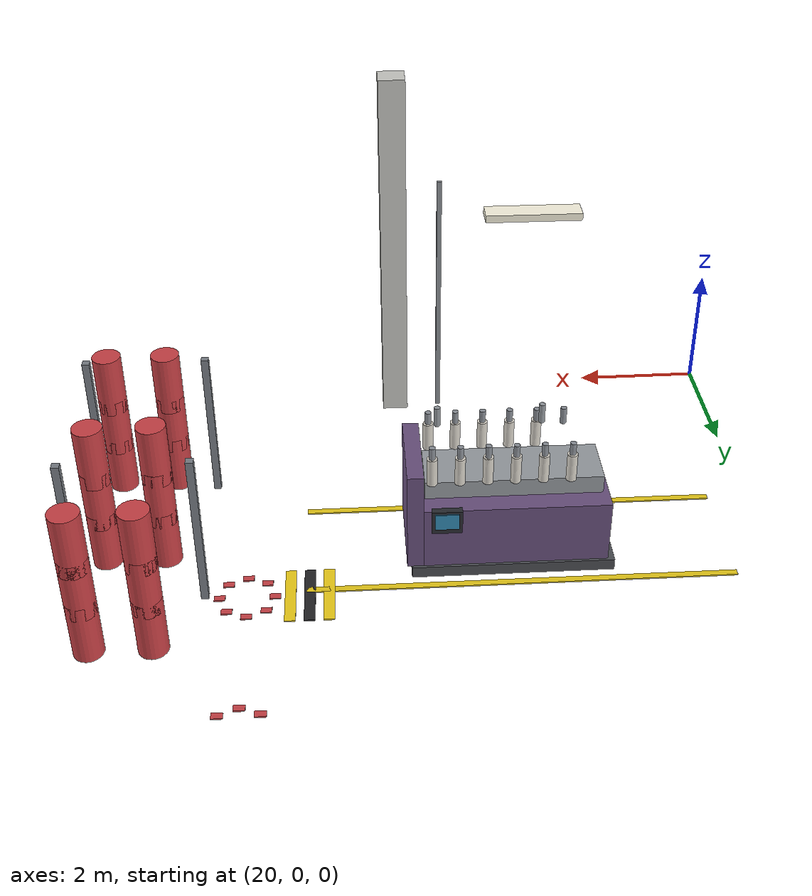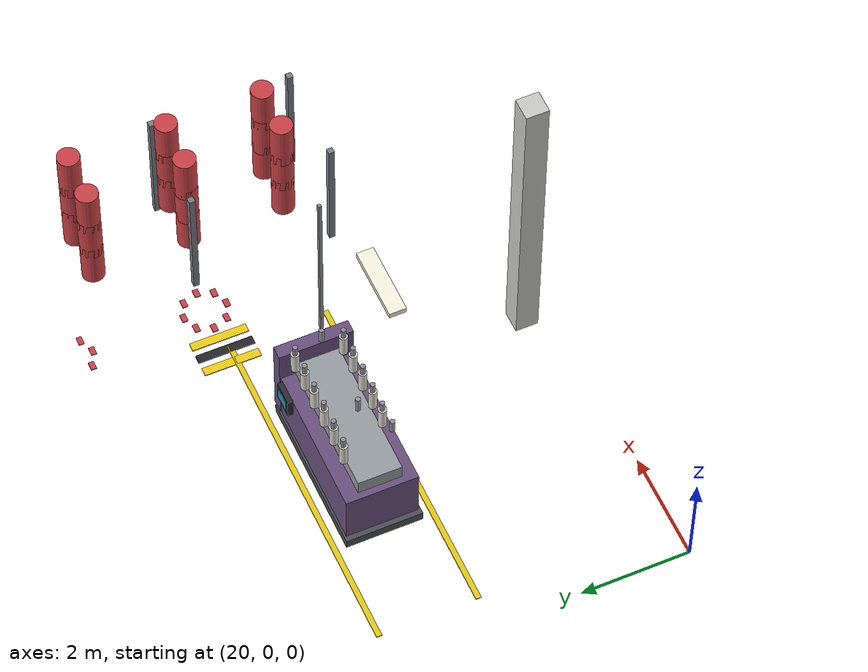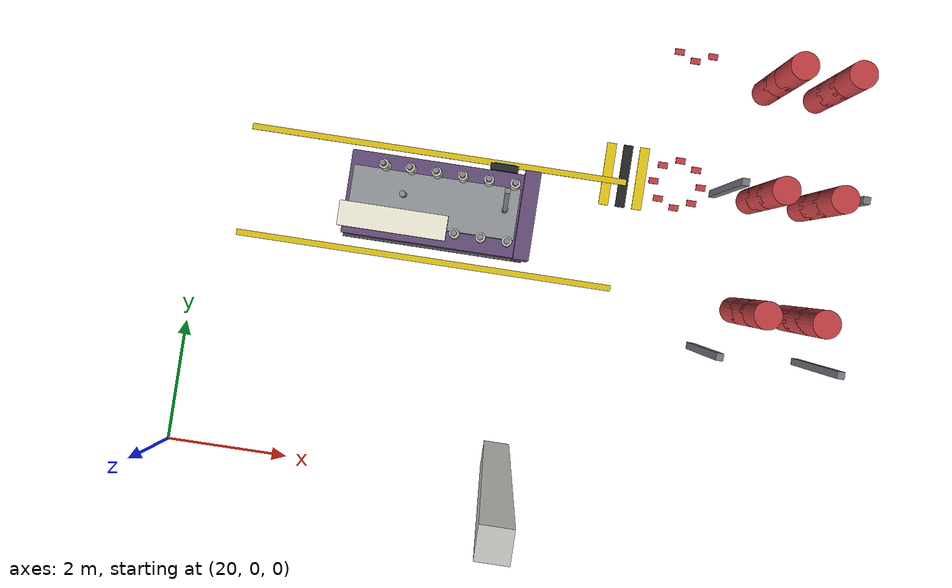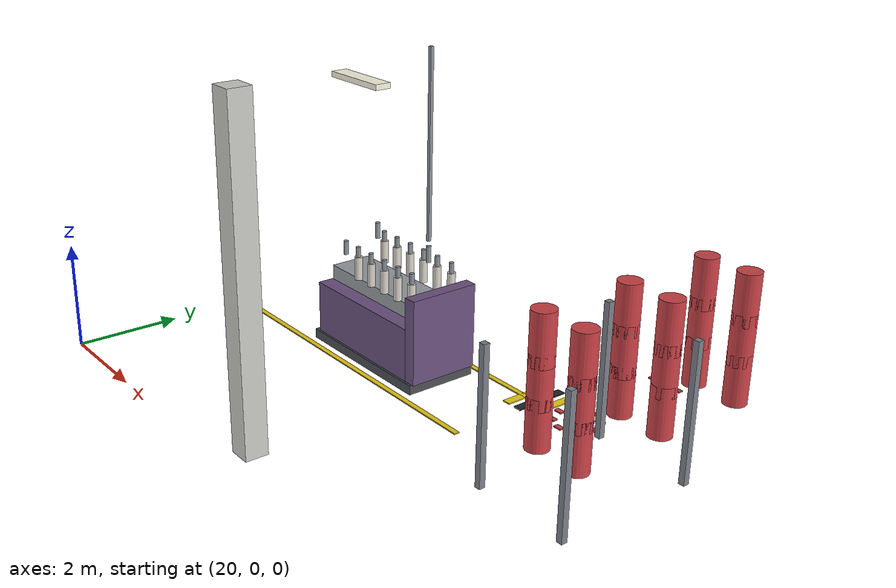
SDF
<sdf version="1.10">
 <world name="textile_mill">
  <model name="col_6">
   <static>true</static>
   <pose>25.450 0.550 3.000 0 0 0</pose>
   <link name="l">
    <collision name="c"><geometry><box><size>0.420 0.420 6.000</size></box></geometry></collision>
    <visual name="v">
     <geometry><box><size>0.420 0.420 6.000</size></box></geometry>
     <material>
      <ambient>0.800 0.800 0.780 1.0</ambient>
      <diffuse>0.800 0.800 0.780 1.0</diffuse>
      <specular>0.18 0.18 0.18 1</specular>
      <pbr><metal><roughness>0.85</roughness><metalness>0.0</metalness></metal></pbr>
     </material>
    </visual>
   </link>
  </model>
  <model name="lamp_3_0">
   <static>true</static>
   <pose>23.700 4.000 5.280 0 0 0</pose>
   <link name="l">
    <collision name="c"><geometry><box><size>1.300 0.300 0.100</size></box></geometry></collision>
    <visual name="v">
     <geometry><box><size>1.300 0.300 0.100</size></box></geometry>
     <material>
      <ambient>1.000 0.980 0.900 1.0</ambient>
      <diffuse>1.000 0.980 0.900 1.0</diffuse>
      <specular>0.18 0.18 0.18 1</specular>
      <pbr><metal><roughness>0.3</roughness><metalness>0.0</metalness></metal></pbr>
     </material>
    </visual>
   </link>
  </model>
  <model name="clnz_roving_0_3">
   <static>true</static>
   <pose>23.500 4.500 2.380 0.0000 0.0000 0.0000</pose>
   <link name="l">
    <collision name="c">
     <geometry><cylinder><radius>0.045</radius><length>0.300</length></cylinder></geometry>
    </collision>
    <visual name="v">
     <geometry><cylinder><radius>0.045</radius><length>0.300</length></cylinder></geometry>
     <material>
      <ambient>0.580 0.600 0.620 1.0</ambient>
      <diffuse>0.580 0.600 0.620 1.0</diffuse>
      <specular>0.18 0.18 0.18 1</specular>
      <pbr><metal><roughness>0.35</roughness><metalness>0.5</metalness></metal></pbr>
     </material>
    </visual>
   </link>
  </model>
  <model name="clnz_roving_0_4">
   <static>true</static>
   <pose>25.000 4.500 2.380 0.0000 0.0000 0.0000</pose>
   <link name="l">
    <collision name="c">
     <geometry><cylinder><radius>0.045</radius><length>0.300</length></cylinder></geometry>
    </collision>
    <visual name="v">
     <geometry><cylinder><radius>0.045</radius><length>0.300</length></cylinder></geometry>
     <material>
      <ambient>0.580 0.600 0.620 1.0</ambient>
      <diffuse>0.580 0.600 0.620 1.0</diffuse>
      <specular>0.18 0.18 0.18 1</specular>
      <pbr><metal><roughness>0.35</roughness><metalness>0.5</metalness></metal></pbr>
     </material>
    </visual>
   </link>
  </model>
  <model name="clnh_roving_0_2">
   <static>true</static>
   <pose>25.000 4.500 4.310 0 0 0</pose>
   <link name="l">
    <collision name="c"><geometry><box><size>0.060 0.060 3.380</size></box></geometry></collision>
    <visual name="v">
     <geometry><box><size>0.060 0.060 3.380</size></box></geometry>
     <material>
      <ambient>0.550 0.570 0.590 1.0</ambient>
      <diffuse>0.550 0.570 0.590 1.0</diffuse>
      <specular>0.18 0.18 0.18 1</specular>
      <pbr><metal><roughness>0.65</roughness><metalness>0.6</metalness></metal></pbr>
     </material>
    </visual>
   </link>
  </model>
  <model name="line_roving_4.5_a">
   <static>true</static>
   <pose>23.775 3.600 0.012 0 0 0</pose>
   <link name="l">
    <visual name="v">
     <geometry><box><size>6.350 0.100 0.020</size></box></geometry>
     <material>
      <ambient>0.920 0.800 0.100 1.0</ambient>
      <diffuse>0.920 0.800 0.100 1.0</diffuse>
      <specular>0.18 0.18 0.18 1</specular>
      <pbr><metal><roughness>0.65</roughness><metalness>0.0</metalness></metal></pbr>
     </material>
    </visual>
   </link>
  </model>
  <model name="line_roving_4.5_b">
   <static>true</static>
   <pose>23.775 5.400 0.012 0 0 0</pose>
   <link name="l">
    <visual name="v">
     <geometry><box><size>6.350 0.100 0.020</size></box></geometry>
     <material>
      <ambient>0.920 0.800 0.100 1.0</ambient>
      <diffuse>0.920 0.800 0.100 1.0</diffuse>
      <specular>0.18 0.18 0.18 1</specular>
      <pbr><metal><roughness>0.65</roughness><metalness>0.0</metalness></metal></pbr>
     </material>
    </visual>
   </link>
  </model>
  <model name="slot_storage_red_slot_0_0">
   <static>true</static>
   <pose>28.200 5.500 0.012 0 0 0</pose>
   <link name="l">
    <visual name="v">
     <geometry><box><size>0.160 0.100 0.020</size></box></geometry>
     <material>
      <ambient>0.800 0.260 0.280 1.0</ambient>
      <diffuse>0.800 0.260 0.280 1.0</diffuse>
      <specular>0.18 0.18 0.18 1</specular>
      <pbr><metal><roughness>0.65</roughness><metalness>0.0</metalness></metal></pbr>
     </material>
    </visual>
   </link>
  </model>
  <model name="slot_storage_red_slot_0_1">
   <static>true</static>
   <pose>28.083 5.783 0.012 0 0 0</pose>
   <link name="l">
    <visual name="v">
     <geometry><box><size>0.160 0.100 0.020</size></box></geometry>
     <material>
      <ambient>0.800 0.260 0.280 1.0</ambient>
      <diffuse>0.800 0.260 0.280 1.0</diffuse>
      <specular>0.18 0.18 0.18 1</specular>
      <pbr><metal><roughness>0.65</roughness><metalness>0.0</metalness></metal></pbr>
     </material>
    </visual>
   </link>
  </model>
  <model name="slot_storage_red_slot_0_2">
   <static>true</static>
   <pose>27.800 5.900 0.012 0 0 0</pose>
   <link name="l">
    <visual name="v">
     <geometry><box><size>0.160 0.100 0.020</size></box></geometry>
     <material>
      <ambient>0.800 0.260 0.280 1.0</ambient>
      <diffuse>0.800 0.260 0.280 1.0</diffuse>
      <specular>0.18 0.18 0.18 1</specular>
      <pbr><metal><roughness>0.65</roughness><metalness>0.0</metalness></metal></pbr>
     </material>
    </visual>
   </link>
  </model>
  <model name="slot_storage_red_slot_0_3">
   <static>true</static>
   <pose>27.517 5.783 0.012 0 0 0</pose>
   <link name="l">
    <visual name="v">
     <geometry><box><size>0.160 0.100 0.020</size></box></geometry>
     <material>
      <ambient>0.800 0.260 0.280 1.0</ambient>
      <diffuse>0.800 0.260 0.280 1.0</diffuse>
      <specular>0.18 0.18 0.18 1</specular>
      <pbr><metal><roughness>0.65</roughness><metalness>0.0</metalness></metal></pbr>
     </material>
    </visual>
   </link>
  </model>
  <model name="slot_storage_red_slot_0_4">
   <static>true</static>
   <pose>27.400 5.500 0.012 0 0 0</pose>
   <link name="l">
    <visual name="v">
     <geometry><box><size>0.160 0.100 0.020</size></box></geometry>
     <material>
      <ambient>0.800 0.260 0.280 1.0</ambient>
      <diffuse>0.800 0.260 0.280 1.0</diffuse>
      <specular>0.18 0.18 0.18 1</specular>
      <pbr><metal><roughness>0.65</roughness><metalness>0.0</metalness></metal></pbr>
     </material>
    </visual>
   </link>
  </model>
  <model name="slot_storage_red_slot_0_5">
   <static>true</static>
   <pose>27.517 5.217 0.012 0 0 0</pose>
   <link name="l">
    <visual name="v">
     <geometry><box><size>0.160 0.100 0.020</size></box></geometry>
     <material>
      <ambient>0.800 0.260 0.280 1.0</ambient>
      <diffuse>0.800 0.260 0.280 1.0</diffuse>
      <specular>0.18 0.18 0.18 1</specular>
      <pbr><metal><roughness>0.65</roughness><metalness>0.0</metalness></metal></pbr>
     </material>
    </visual>
   </link>
  </model>
  <model name="slot_storage_red_slot_0_6">
   <static>true</static>
   <pose>27.800 5.100 0.012 0 0 0</pose>
   <link name="l">
    <visual name="v">
     <geometry><box><size>0.160 0.100 0.020</size></box></geometry>
     <material>
      <ambient>0.800 0.260 0.280 1.0</ambient>
      <diffuse>0.800 0.260 0.280 1.0</diffuse>
      <specular>0.18 0.18 0.18 1</specular>
      <pbr><metal><roughness>0.65</roughness><metalness>0.0</metalness></metal></pbr>
     </material>
    </visual>
   </link>
  </model>
  <model name="slot_storage_red_slot_0_7">
   <static>true</static>
   <pose>28.083 5.217 0.012 0 0 0</pose>
   <link name="l">
    <visual name="v">
     <geometry><box><size>0.160 0.100 0.020</size></box></geometry>
     <material>
      <ambient>0.800 0.260 0.280 1.0</ambient>
      <diffuse>0.800 0.260 0.280 1.0</diffuse>
      <specular>0.18 0.18 0.18 1</specular>
      <pbr><metal><roughness>0.65</roughness><metalness>0.0</metalness></metal></pbr>
     </material>
    </visual>
   </link>
  </model>
  <model name="slot_storage_red_slot_1_5">
   <static>true</static>
   <pose>27.517 7.717 0.012 0 0 0</pose>
   <link name="l">
    <visual name="v">
     <geometry><box><size>0.160 0.100 0.020</size></box></geometry>
     <material>
      <ambient>0.800 0.260 0.280 1.0</ambient>
      <diffuse>0.800 0.260 0.280 1.0</diffuse>
      <specular>0.18 0.18 0.18 1</specular>
      <pbr><metal><roughness>0.65</roughness><metalness>0.0</metalness></metal></pbr>
     </material>
    </visual>
   </link>
  </model>
  <model name="slot_storage_red_slot_1_6">
   <static>true</static>
   <pose>27.800 7.600 0.012 0 0 0</pose>
   <link name="l">
    <visual name="v">
     <geometry><box><size>0.160 0.100 0.020</size></box></geometry>
     <material>
      <ambient>0.800 0.260 0.280 1.0</ambient>
      <diffuse>0.800 0.260 0.280 1.0</diffuse>
      <specular>0.18 0.18 0.18 1</specular>
      <pbr><metal><roughness>0.65</roughness><metalness>0.0</metalness></metal></pbr>
     </material>
    </visual>
   </link>
  </model>
  <model name="slot_storage_red_slot_1_7">
   <static>true</static>
   <pose>28.083 7.717 0.012 0 0 0</pose>
   <link name="l">
    <visual name="v">
     <geometry><box><size>0.160 0.100 0.020</size></box></geometry>
     <material>
      <ambient>0.800 0.260 0.280 1.0</ambient>
      <diffuse>0.800 0.260 0.280 1.0</diffuse>
      <specular>0.18 0.18 0.18 1</specular>
      <pbr><metal><roughness>0.65</roughness><metalness>0.0</metalness></metal></pbr>
     </material>
    </visual>
   </link>
  </model>
  <model name="hz_red_0_0">
   <static>true</static>
   <pose>27.180 5.500 0.012 0 0 0</pose>
   <link name="l">
    <visual name="v">
     <geometry><box><size>0.160 1.050 0.020</size></box></geometry>
     <material>
      <ambient>0.950 0.820 0.100 1.0</ambient>
      <diffuse>0.950 0.820 0.100 1.0</diffuse>
      <specular>0.18 0.18 0.18 1</specular>
      <pbr><metal><roughness>0.65</roughness><metalness>0.0</metalness></metal></pbr>
     </material>
    </visual>
   </link>
  </model>
  <model name="hz_red_0_1">
   <static>true</static>
   <pose>26.900 5.500 0.012 0 0 0</pose>
   <link name="l">
    <visual name="v">
     <geometry><box><size>0.160 1.050 0.020</size></box></geometry>
     <material>
      <ambient>0.150 0.150 0.160 1.0</ambient>
      <diffuse>0.150 0.150 0.160 1.0</diffuse>
      <specular>0.18 0.18 0.18 1</specular>
      <pbr><metal><roughness>0.65</roughness><metalness>0.0</metalness></metal></pbr>
     </material>
    </visual>
   </link>
  </model>
  <model name="hz_red_0_2">
   <static>true</static>
   <pose>26.620 5.500 0.012 0 0 0</pose>
   <link name="l">
    <visual name="v">
     <geometry><box><size>0.160 1.050 0.020</size></box></geometry>
     <material>
      <ambient>0.950 0.820 0.100 1.0</ambient>
      <diffuse>0.950 0.820 0.100 1.0</diffuse>
      <specular>0.18 0.18 0.18 1</specular>
      <pbr><metal><roughness>0.65</roughness><metalness>0.0</metalness></metal></pbr>
     </material>
    </visual>
   </link>
  </model>
  <model name="roving_machine_0_plinth">
   <static>true</static>
   <pose>23.900 4.500 0.090 0 0 0</pose>
   <link name="l">
    <collision name="c"><geometry><box><size>3.000 1.400 0.180</size></box></geometry></collision>
    <visual name="v">
     <geometry><box><size>3.000 1.400 0.180</size></box></geometry>
     <material>
      <ambient>0.300 0.310 0.330 1.0</ambient>
      <diffuse>0.300 0.310 0.330 1.0</diffuse>
      <specular>0.18 0.18 0.18 1</specular>
      <pbr><metal><roughness>0.65</roughness><metalness>0.4</metalness></metal></pbr>
     </material>
    </visual>
   </link>
  </model>
  <model name="roving_machine_0_body">
   <static>true</static>
   <pose>23.900 4.500 0.680 0 0 0</pose>
   <link name="l">
    <collision name="c"><geometry><box><size>2.800 1.320 1.000</size></box></geometry></collision>
    <visual name="v">
     <geometry><box><size>2.800 1.320 1.000</size></box></geometry>
     <material>
      <ambient>0.420 0.320 0.500 1.0</ambient>
      <diffuse>0.420 0.320 0.500 1.0</diffuse>
      <specular>0.18 0.18 0.18 1</specular>
      <pbr><metal><roughness>0.45</roughness><metalness>0.25</metalness></metal></pbr>
     </material>
    </visual>
   </link>
  </model>
  <model name="roving_machine_0_draft">
   <static>true</static>
   <pose>23.900 4.500 1.360 0 0 0</pose>
   <link name="l">
    <collision name="c"><geometry><box><size>2.600 0.800 0.280</size></box></geometry></collision>
    <visual name="v">
     <geometry><box><size>2.600 0.800 0.280</size></box></geometry>
     <material>
      <ambient>0.600 0.620 0.640 1.0</ambient>
      <diffuse>0.600 0.620 0.640 1.0</diffuse>
      <specular>0.18 0.18 0.18 1</specular>
      <pbr><metal><roughness>0.3</roughness><metalness>0.6</metalness></metal></pbr>
     </material>
    </visual>
   </link>
  </model>
  <model name="roving_machine_0_fly_0_1">
   <static>true</static>
   <pose>23.100 4.060 2.020 0.0000 0.0000 0.0000</pose>
   <link name="l">
    <collision name="c">
     <geometry><cylinder><radius>0.045</radius><length>0.260</length></cylinder></geometry>
    </collision>
    <visual name="v">
     <geometry><cylinder><radius>0.045</radius><length>0.260</length></cylinder></geometry>
     <material>
      <ambient>0.550 0.570 0.600 1.0</ambient>
      <diffuse>0.550 0.570 0.600 1.0</diffuse>
      <specular>0.18 0.18 0.18 1</specular>
      <pbr><metal><roughness>0.25</roughness><metalness>0.7</metalness></metal></pbr>
     </material>
    </visual>
   </link>
  </model>
  <model name="roving_machine_0_bob_0_2">
   <static>true</static>
   <pose>23.500 4.060 1.740 0.0000 0.0000 0.0000</pose>
   <link name="l">
    <collision name="c">
     <geometry><cylinder><radius>0.075</radius><length>0.440</length></cylinder></geometry>
    </collision>
    <visual name="v">
     <geometry><cylinder><radius>0.075</radius><length>0.440</length></cylinder></geometry>
     <material>
      <ambient>0.860 0.840 0.800 1.0</ambient>
      <diffuse>0.860 0.840 0.800 1.0</diffuse>
      <specular>0.18 0.18 0.18 1</specular>
      <pbr><metal><roughness>0.65</roughness><metalness>0.0</metalness></metal></pbr>
     </material>
    </visual>
   </link>
  </model>
  <model name="roving_machine_0_fly_0_2">
   <static>true</static>
   <pose>23.500 4.060 2.020 0.0000 0.0000 0.0000</pose>
   <link name="l">
    <collision name="c">
     <geometry><cylinder><radius>0.045</radius><length>0.260</length></cylinder></geometry>
    </collision>
    <visual name="v">
     <geometry><cylinder><radius>0.045</radius><length>0.260</length></cylinder></geometry>
     <material>
      <ambient>0.550 0.570 0.600 1.0</ambient>
      <diffuse>0.550 0.570 0.600 1.0</diffuse>
      <specular>0.18 0.18 0.18 1</specular>
      <pbr><metal><roughness>0.25</roughness><metalness>0.7</metalness></metal></pbr>
     </material>
    </visual>
   </link>
  </model>
  <model name="roving_machine_0_bob_0_3">
   <static>true</static>
   <pose>23.900 4.060 1.740 0.0000 0.0000 0.0000</pose>
   <link name="l">
    <collision name="c">
     <geometry><cylinder><radius>0.075</radius><length>0.440</length></cylinder></geometry>
    </collision>
    <visual name="v">
     <geometry><cylinder><radius>0.075</radius><length>0.440</length></cylinder></geometry>
     <material>
      <ambient>0.860 0.840 0.800 1.0</ambient>
      <diffuse>0.860 0.840 0.800 1.0</diffuse>
      <specular>0.18 0.18 0.18 1</specular>
      <pbr><metal><roughness>0.65</roughness><metalness>0.0</metalness></metal></pbr>
     </material>
    </visual>
   </link>
  </model>
  <model name="roving_machine_0_fly_0_3">
   <static>true</static>
   <pose>23.900 4.060 2.020 0.0000 0.0000 0.0000</pose>
   <link name="l">
    <collision name="c">
     <geometry><cylinder><radius>0.045</radius><length>0.260</length></cylinder></geometry>
    </collision>
    <visual name="v">
     <geometry><cylinder><radius>0.045</radius><length>0.260</length></cylinder></geometry>
     <material>
      <ambient>0.550 0.570 0.600 1.0</ambient>
      <diffuse>0.550 0.570 0.600 1.0</diffuse>
      <specular>0.18 0.18 0.18 1</specular>
      <pbr><metal><roughness>0.25</roughness><metalness>0.7</metalness></metal></pbr>
     </material>
    </visual>
   </link>
  </model>
  <model name="roving_machine_0_bob_0_4">
   <static>true</static>
   <pose>24.300 4.060 1.740 0.0000 0.0000 0.0000</pose>
   <link name="l">
    <collision name="c">
     <geometry><cylinder><radius>0.075</radius><length>0.440</length></cylinder></geometry>
    </collision>
    <visual name="v">
     <geometry><cylinder><radius>0.075</radius><length>0.440</length></cylinder></geometry>
     <material>
      <ambient>0.860 0.840 0.800 1.0</ambient>
      <diffuse>0.860 0.840 0.800 1.0</diffuse>
      <specular>0.18 0.18 0.18 1</specular>
      <pbr><metal><roughness>0.65</roughness><metalness>0.0</metalness></metal></pbr>
     </material>
    </visual>
   </link>
  </model>
  <model name="roving_machine_0_fly_0_4">
   <static>true</static>
   <pose>24.300 4.060 2.020 0.0000 0.0000 0.0000</pose>
   <link name="l">
    <collision name="c">
     <geometry><cylinder><radius>0.045</radius><length>0.260</length></cylinder></geometry>
    </collision>
    <visual name="v">
     <geometry><cylinder><radius>0.045</radius><length>0.260</length></cylinder></geometry>
     <material>
      <ambient>0.550 0.570 0.600 1.0</ambient>
      <diffuse>0.550 0.570 0.600 1.0</diffuse>
      <specular>0.18 0.18 0.18 1</specular>
      <pbr><metal><roughness>0.25</roughness><metalness>0.7</metalness></metal></pbr>
     </material>
    </visual>
   </link>
  </model>
  <model name="roving_machine_0_bob_0_5">
   <static>true</static>
   <pose>24.700 4.060 1.740 0.0000 0.0000 0.0000</pose>
   <link name="l">
    <collision name="c">
     <geometry><cylinder><radius>0.075</radius><length>0.440</length></cylinder></geometry>
    </collision>
    <visual name="v">
     <geometry><cylinder><radius>0.075</radius><length>0.440</length></cylinder></geometry>
     <material>
      <ambient>0.860 0.840 0.800 1.0</ambient>
      <diffuse>0.860 0.840 0.800 1.0</diffuse>
      <specular>0.18 0.18 0.18 1</specular>
      <pbr><metal><roughness>0.65</roughness><metalness>0.0</metalness></metal></pbr>
     </material>
    </visual>
   </link>
  </model>
  <model name="roving_machine_0_fly_0_5">
   <static>true</static>
   <pose>24.700 4.060 2.020 0.0000 0.0000 0.0000</pose>
   <link name="l">
    <collision name="c">
     <geometry><cylinder><radius>0.045</radius><length>0.260</length></cylinder></geometry>
    </collision>
    <visual name="v">
     <geometry><cylinder><radius>0.045</radius><length>0.260</length></cylinder></geometry>
     <material>
      <ambient>0.550 0.570 0.600 1.0</ambient>
      <diffuse>0.550 0.570 0.600 1.0</diffuse>
      <specular>0.18 0.18 0.18 1</specular>
      <pbr><metal><roughness>0.25</roughness><metalness>0.7</metalness></metal></pbr>
     </material>
    </visual>
   </link>
  </model>
  <model name="roving_machine_0_bob_0_6">
   <static>true</static>
   <pose>25.100 4.060 1.740 0.0000 0.0000 0.0000</pose>
   <link name="l">
    <collision name="c">
     <geometry><cylinder><radius>0.075</radius><length>0.440</length></cylinder></geometry>
    </collision>
    <visual name="v">
     <geometry><cylinder><radius>0.075</radius><length>0.440</length></cylinder></geometry>
     <material>
      <ambient>0.860 0.840 0.800 1.0</ambient>
      <diffuse>0.860 0.840 0.800 1.0</diffuse>
      <specular>0.18 0.18 0.18 1</specular>
      <pbr><metal><roughness>0.65</roughness><metalness>0.0</metalness></metal></pbr>
     </material>
    </visual>
   </link>
  </model>
  <model name="roving_machine_0_fly_0_6">
   <static>true</static>
   <pose>25.100 4.060 2.020 0.0000 0.0000 0.0000</pose>
   <link name="l">
    <collision name="c">
     <geometry><cylinder><radius>0.045</radius><length>0.260</length></cylinder></geometry>
    </collision>
    <visual name="v">
     <geometry><cylinder><radius>0.045</radius><length>0.260</length></cylinder></geometry>
     <material>
      <ambient>0.550 0.570 0.600 1.0</ambient>
      <diffuse>0.550 0.570 0.600 1.0</diffuse>
      <specular>0.18 0.18 0.18 1</specular>
      <pbr><metal><roughness>0.25</roughness><metalness>0.7</metalness></metal></pbr>
     </material>
    </visual>
   </link>
  </model>
  <model name="roving_machine_0_bob_1_1">
   <static>true</static>
   <pose>23.100 4.940 1.740 0.0000 0.0000 0.0000</pose>
   <link name="l">
    <collision name="c">
     <geometry><cylinder><radius>0.075</radius><length>0.440</length></cylinder></geometry>
    </collision>
    <visual name="v">
     <geometry><cylinder><radius>0.075</radius><length>0.440</length></cylinder></geometry>
     <material>
      <ambient>0.860 0.840 0.800 1.0</ambient>
      <diffuse>0.860 0.840 0.800 1.0</diffuse>
      <specular>0.18 0.18 0.18 1</specular>
      <pbr><metal><roughness>0.65</roughness><metalness>0.0</metalness></metal></pbr>
     </material>
    </visual>
   </link>
  </model>
  <model name="roving_machine_0_fly_1_1">
   <static>true</static>
   <pose>23.100 4.940 2.020 0.0000 0.0000 0.0000</pose>
   <link name="l">
    <collision name="c">
     <geometry><cylinder><radius>0.045</radius><length>0.260</length></cylinder></geometry>
    </collision>
    <visual name="v">
     <geometry><cylinder><radius>0.045</radius><length>0.260</length></cylinder></geometry>
     <material>
      <ambient>0.550 0.570 0.600 1.0</ambient>
      <diffuse>0.550 0.570 0.600 1.0</diffuse>
      <specular>0.18 0.18 0.18 1</specular>
      <pbr><metal><roughness>0.25</roughness><metalness>0.7</metalness></metal></pbr>
     </material>
    </visual>
   </link>
  </model>
  <model name="roving_machine_0_bob_1_2">
   <static>true</static>
   <pose>23.500 4.940 1.740 0.0000 0.0000 0.0000</pose>
   <link name="l">
    <collision name="c">
     <geometry><cylinder><radius>0.075</radius><length>0.440</length></cylinder></geometry>
    </collision>
    <visual name="v">
     <geometry><cylinder><radius>0.075</radius><length>0.440</length></cylinder></geometry>
     <material>
      <ambient>0.860 0.840 0.800 1.0</ambient>
      <diffuse>0.860 0.840 0.800 1.0</diffuse>
      <specular>0.18 0.18 0.18 1</specular>
      <pbr><metal><roughness>0.65</roughness><metalness>0.0</metalness></metal></pbr>
     </material>
    </visual>
   </link>
  </model>
  <model name="roving_machine_0_fly_1_2">
   <static>true</static>
   <pose>23.500 4.940 2.020 0.0000 0.0000 0.0000</pose>
   <link name="l">
    <collision name="c">
     <geometry><cylinder><radius>0.045</radius><length>0.260</length></cylinder></geometry>
    </collision>
    <visual name="v">
     <geometry><cylinder><radius>0.045</radius><length>0.260</length></cylinder></geometry>
     <material>
      <ambient>0.550 0.570 0.600 1.0</ambient>
      <diffuse>0.550 0.570 0.600 1.0</diffuse>
      <specular>0.18 0.18 0.18 1</specular>
      <pbr><metal><roughness>0.25</roughness><metalness>0.7</metalness></metal></pbr>
     </material>
    </visual>
   </link>
  </model>
  <model name="roving_machine_0_bob_1_3">
   <static>true</static>
   <pose>23.900 4.940 1.740 0.0000 0.0000 0.0000</pose>
   <link name="l">
    <collision name="c">
     <geometry><cylinder><radius>0.075</radius><length>0.440</length></cylinder></geometry>
    </collision>
    <visual name="v">
     <geometry><cylinder><radius>0.075</radius><length>0.440</length></cylinder></geometry>
     <material>
      <ambient>0.860 0.840 0.800 1.0</ambient>
      <diffuse>0.860 0.840 0.800 1.0</diffuse>
      <specular>0.18 0.18 0.18 1</specular>
      <pbr><metal><roughness>0.65</roughness><metalness>0.0</metalness></metal></pbr>
     </material>
    </visual>
   </link>
  </model>
  <model name="roving_machine_0_fly_1_3">
   <static>true</static>
   <pose>23.900 4.940 2.020 0.0000 0.0000 0.0000</pose>
   <link name="l">
    <collision name="c">
     <geometry><cylinder><radius>0.045</radius><length>0.260</length></cylinder></geometry>
    </collision>
    <visual name="v">
     <geometry><cylinder><radius>0.045</radius><length>0.260</length></cylinder></geometry>
     <material>
      <ambient>0.550 0.570 0.600 1.0</ambient>
      <diffuse>0.550 0.570 0.600 1.0</diffuse>
      <specular>0.18 0.18 0.18 1</specular>
      <pbr><metal><roughness>0.25</roughness><metalness>0.7</metalness></metal></pbr>
     </material>
    </visual>
   </link>
  </model>
  <model name="roving_machine_0_bob_1_4">
   <static>true</static>
   <pose>24.300 4.940 1.740 0.0000 0.0000 0.0000</pose>
   <link name="l">
    <collision name="c">
     <geometry><cylinder><radius>0.075</radius><length>0.440</length></cylinder></geometry>
    </collision>
    <visual name="v">
     <geometry><cylinder><radius>0.075</radius><length>0.440</length></cylinder></geometry>
     <material>
      <ambient>0.860 0.840 0.800 1.0</ambient>
      <diffuse>0.860 0.840 0.800 1.0</diffuse>
      <specular>0.18 0.18 0.18 1</specular>
      <pbr><metal><roughness>0.65</roughness><metalness>0.0</metalness></metal></pbr>
     </material>
    </visual>
   </link>
  </model>
  <model name="roving_machine_0_fly_1_4">
   <static>true</static>
   <pose>24.300 4.940 2.020 0.0000 0.0000 0.0000</pose>
   <link name="l">
    <collision name="c">
     <geometry><cylinder><radius>0.045</radius><length>0.260</length></cylinder></geometry>
    </collision>
    <visual name="v">
     <geometry><cylinder><radius>0.045</radius><length>0.260</length></cylinder></geometry>
     <material>
      <ambient>0.550 0.570 0.600 1.0</ambient>
      <diffuse>0.550 0.570 0.600 1.0</diffuse>
      <specular>0.18 0.18 0.18 1</specular>
      <pbr><metal><roughness>0.25</roughness><metalness>0.7</metalness></metal></pbr>
     </material>
    </visual>
   </link>
  </model>
  <model name="roving_machine_0_bob_1_5">
   <static>true</static>
   <pose>24.700 4.940 1.740 0.0000 0.0000 0.0000</pose>
   <link name="l">
    <collision name="c">
     <geometry><cylinder><radius>0.075</radius><length>0.440</length></cylinder></geometry>
    </collision>
    <visual name="v">
     <geometry><cylinder><radius>0.075</radius><length>0.440</length></cylinder></geometry>
     <material>
      <ambient>0.860 0.840 0.800 1.0</ambient>
      <diffuse>0.860 0.840 0.800 1.0</diffuse>
      <specular>0.18 0.18 0.18 1</specular>
      <pbr><metal><roughness>0.65</roughness><metalness>0.0</metalness></metal></pbr>
     </material>
    </visual>
   </link>
  </model>
  <model name="roving_machine_0_fly_1_5">
   <static>true</static>
   <pose>24.700 4.940 2.020 0.0000 0.0000 0.0000</pose>
   <link name="l">
    <collision name="c">
     <geometry><cylinder><radius>0.045</radius><length>0.260</length></cylinder></geometry>
    </collision>
    <visual name="v">
     <geometry><cylinder><radius>0.045</radius><length>0.260</length></cylinder></geometry>
     <material>
      <ambient>0.550 0.570 0.600 1.0</ambient>
      <diffuse>0.550 0.570 0.600 1.0</diffuse>
      <specular>0.18 0.18 0.18 1</specular>
      <pbr><metal><roughness>0.25</roughness><metalness>0.7</metalness></metal></pbr>
     </material>
    </visual>
   </link>
  </model>
  <model name="roving_machine_0_bob_1_6">
   <static>true</static>
   <pose>25.100 4.940 1.740 0.0000 0.0000 0.0000</pose>
   <link name="l">
    <collision name="c">
     <geometry><cylinder><radius>0.075</radius><length>0.440</length></cylinder></geometry>
    </collision>
    <visual name="v">
     <geometry><cylinder><radius>0.075</radius><length>0.440</length></cylinder></geometry>
     <material>
      <ambient>0.860 0.840 0.800 1.0</ambient>
      <diffuse>0.860 0.840 0.800 1.0</diffuse>
      <specular>0.18 0.18 0.18 1</specular>
      <pbr><metal><roughness>0.65</roughness><metalness>0.0</metalness></metal></pbr>
     </material>
    </visual>
   </link>
  </model>
  <model name="roving_machine_0_fly_1_6">
   <static>true</static>
   <pose>25.100 4.940 2.020 0.0000 0.0000 0.0000</pose>
   <link name="l">
    <collision name="c">
     <geometry><cylinder><radius>0.045</radius><length>0.260</length></cylinder></geometry>
    </collision>
    <visual name="v">
     <geometry><cylinder><radius>0.045</radius><length>0.260</length></cylinder></geometry>
     <material>
      <ambient>0.550 0.570 0.600 1.0</ambient>
      <diffuse>0.550 0.570 0.600 1.0</diffuse>
      <specular>0.18 0.18 0.18 1</specular>
      <pbr><metal><roughness>0.25</roughness><metalness>0.7</metalness></metal></pbr>
     </material>
    </visual>
   </link>
  </model>
  <model name="roving_machine_0_end_b">
   <static>true</static>
   <pose>25.350 4.500 1.000 0 0 0</pose>
   <link name="l">
    <collision name="c"><geometry><box><size>0.240 1.360 1.600</size></box></geometry></collision>
    <visual name="v">
     <geometry><box><size>0.240 1.360 1.600</size></box></geometry>
     <material>
      <ambient>0.420 0.320 0.500 1.0</ambient>
      <diffuse>0.420 0.320 0.500 1.0</diffuse>
      <specular>0.18 0.18 0.18 1</specular>
      <pbr><metal><roughness>0.65</roughness><metalness>0.0</metalness></metal></pbr>
     </material>
    </visual>
   </link>
  </model>
  <model name="roving_machine_0_panel">
   <static>true</static>
   <pose>24.900 5.220 1.060 0 0 0</pose>
   <link name="l">
    <collision name="c"><geometry><box><size>0.440 0.100 0.380</size></box></geometry></collision>
    <visual name="v">
     <geometry><box><size>0.440 0.100 0.380</size></box></geometry>
     <material>
      <ambient>0.160 0.170 0.190 1.0</ambient>
      <diffuse>0.160 0.170 0.190 1.0</diffuse>
      <specular>0.18 0.18 0.18 1</specular>
      <pbr><metal><roughness>0.65</roughness><metalness>0.0</metalness></metal></pbr>
     </material>
    </visual>
   </link>
  </model>
  <model name="roving_machine_0_screen">
   <static>true</static>
   <pose>24.900 5.270 1.080 0 0 0</pose>
   <link name="l">
    <collision name="c"><geometry><box><size>0.340 0.030 0.260</size></box></geometry></collision>
    <visual name="v">
     <geometry><box><size>0.340 0.030 0.260</size></box></geometry>
     <material>
      <ambient>0.200 0.550 0.720 1.0</ambient>
      <diffuse>0.200 0.550 0.720 1.0</diffuse>
      <specular>0.18 0.18 0.18 1</specular>
      <pbr><metal><roughness>0.65</roughness><metalness>0.0</metalness></metal></pbr>
     </material>
    </visual>
   </link>
  </model>
  <model name="rack_red_can_0_0_a">
   <static>true</static>
   <pose>28.882 3.550 1.120 0.0000 0.0000 0.0000</pose>
   <link name="l">
    <collision name="c">
     <geometry><cylinder><radius>0.205</radius><length>0.900</length></cylinder></geometry>
    </collision>
    <visual name="v">
     <geometry><cylinder><radius>0.205</radius><length>0.900</length></cylinder></geometry>
     <material>
      <ambient>0.800 0.260 0.280 1.0</ambient>
      <diffuse>0.800 0.260 0.280 1.0</diffuse>
      <specular>0.18 0.18 0.18 1</specular>
      <pbr><metal><roughness>0.6</roughness><metalness>0.0</metalness></metal></pbr>
     </material>
    </visual>
   </link>
  </model>
  <model name="rack_red_can_0_0_b">
   <static>true</static>
   <pose>29.718 3.550 1.120 0.0000 0.0000 0.0000</pose>
   <link name="l">
    <collision name="c">
     <geometry><cylinder><radius>0.205</radius><length>0.900</length></cylinder></geometry>
    </collision>
    <visual name="v">
     <geometry><cylinder><radius>0.205</radius><length>0.900</length></cylinder></geometry>
     <material>
      <ambient>0.800 0.260 0.280 1.0</ambient>
      <diffuse>0.800 0.260 0.280 1.0</diffuse>
      <specular>0.18 0.18 0.18 1</specular>
      <pbr><metal><roughness>0.6</roughness><metalness>0.0</metalness></metal></pbr>
     </material>
    </visual>
   </link>
  </model>
  <model name="rack_red_can_0_1_a">
   <static>true</static>
   <pose>28.882 5.330 1.120 0.0000 0.0000 0.0000</pose>
   <link name="l">
    <collision name="c">
     <geometry><cylinder><radius>0.205</radius><length>0.900</length></cylinder></geometry>
    </collision>
    <visual name="v">
     <geometry><cylinder><radius>0.205</radius><length>0.900</length></cylinder></geometry>
     <material>
      <ambient>0.800 0.260 0.280 1.0</ambient>
      <diffuse>0.800 0.260 0.280 1.0</diffuse>
      <specular>0.18 0.18 0.18 1</specular>
      <pbr><metal><roughness>0.6</roughness><metalness>0.0</metalness></metal></pbr>
     </material>
    </visual>
   </link>
  </model>
  <model name="rack_red_can_0_1_b">
   <static>true</static>
   <pose>29.718 5.330 1.120 0.0000 0.0000 0.0000</pose>
   <link name="l">
    <collision name="c">
     <geometry><cylinder><radius>0.205</radius><length>0.900</length></cylinder></geometry>
    </collision>
    <visual name="v">
     <geometry><cylinder><radius>0.205</radius><length>0.900</length></cylinder></geometry>
     <material>
      <ambient>0.800 0.260 0.280 1.0</ambient>
      <diffuse>0.800 0.260 0.280 1.0</diffuse>
      <specular>0.18 0.18 0.18 1</specular>
      <pbr><metal><roughness>0.6</roughness><metalness>0.0</metalness></metal></pbr>
     </material>
    </visual>
   </link>
  </model>
  <model name="rack_red_can_0_2_a">
   <static>true</static>
   <pose>28.882 7.110 1.120 0.0000 0.0000 0.0000</pose>
   <link name="l">
    <collision name="c">
     <geometry><cylinder><radius>0.205</radius><length>0.900</length></cylinder></geometry>
    </collision>
    <visual name="v">
     <geometry><cylinder><radius>0.205</radius><length>0.900</length></cylinder></geometry>
     <material>
      <ambient>0.800 0.260 0.280 1.0</ambient>
      <diffuse>0.800 0.260 0.280 1.0</diffuse>
      <specular>0.18 0.18 0.18 1</specular>
      <pbr><metal><roughness>0.6</roughness><metalness>0.0</metalness></metal></pbr>
     </material>
    </visual>
   </link>
  </model>
  <model name="rack_red_can_0_2_b">
   <static>true</static>
   <pose>29.718 7.110 1.120 0.0000 0.0000 0.0000</pose>
   <link name="l">
    <collision name="c">
     <geometry><cylinder><radius>0.205</radius><length>0.900</length></cylinder></geometry>
    </collision>
    <visual name="v">
     <geometry><cylinder><radius>0.205</radius><length>0.900</length></cylinder></geometry>
     <material>
      <ambient>0.800 0.260 0.280 1.0</ambient>
      <diffuse>0.800 0.260 0.280 1.0</diffuse>
      <specular>0.18 0.18 0.18 1</specular>
      <pbr><metal><roughness>0.6</roughness><metalness>0.0</metalness></metal></pbr>
     </material>
    </visual>
   </link>
  </model>
  <model name="rack_red_can_1_0_a">
   <static>true</static>
   <pose>28.882 3.550 1.820 0.0000 0.0000 0.0000</pose>
   <link name="l">
    <collision name="c">
     <geometry><cylinder><radius>0.205</radius><length>0.900</length></cylinder></geometry>
    </collision>
    <visual name="v">
     <geometry><cylinder><radius>0.205</radius><length>0.900</length></cylinder></geometry>
     <material>
      <ambient>0.800 0.260 0.280 1.0</ambient>
      <diffuse>0.800 0.260 0.280 1.0</diffuse>
      <specular>0.18 0.18 0.18 1</specular>
      <pbr><metal><roughness>0.6</roughness><metalness>0.0</metalness></metal></pbr>
     </material>
    </visual>
   </link>
  </model>
  <model name="rack_red_can_1_0_b">
   <static>true</static>
   <pose>29.718 3.550 1.820 0.0000 0.0000 0.0000</pose>
   <link name="l">
    <collision name="c">
     <geometry><cylinder><radius>0.205</radius><length>0.900</length></cylinder></geometry>
    </collision>
    <visual name="v">
     <geometry><cylinder><radius>0.205</radius><length>0.900</length></cylinder></geometry>
     <material>
      <ambient>0.800 0.260 0.280 1.0</ambient>
      <diffuse>0.800 0.260 0.280 1.0</diffuse>
      <specular>0.18 0.18 0.18 1</specular>
      <pbr><metal><roughness>0.6</roughness><metalness>0.0</metalness></metal></pbr>
     </material>
    </visual>
   </link>
  </model>
  <model name="rack_red_can_1_1_a">
   <static>true</static>
   <pose>28.882 5.330 1.820 0.0000 0.0000 0.0000</pose>
   <link name="l">
    <collision name="c">
     <geometry><cylinder><radius>0.205</radius><length>0.900</length></cylinder></geometry>
    </collision>
    <visual name="v">
     <geometry><cylinder><radius>0.205</radius><length>0.900</length></cylinder></geometry>
     <material>
      <ambient>0.800 0.260 0.280 1.0</ambient>
      <diffuse>0.800 0.260 0.280 1.0</diffuse>
      <specular>0.18 0.18 0.18 1</specular>
      <pbr><metal><roughness>0.6</roughness><metalness>0.0</metalness></metal></pbr>
     </material>
    </visual>
   </link>
  </model>
  <model name="rack_red_can_1_1_b">
   <static>true</static>
   <pose>29.718 5.330 1.820 0.0000 0.0000 0.0000</pose>
   <link name="l">
    <collision name="c">
     <geometry><cylinder><radius>0.205</radius><length>0.900</length></cylinder></geometry>
    </collision>
    <visual name="v">
     <geometry><cylinder><radius>0.205</radius><length>0.900</length></cylinder></geometry>
     <material>
      <ambient>0.800 0.260 0.280 1.0</ambient>
      <diffuse>0.800 0.260 0.280 1.0</diffuse>
      <specular>0.18 0.18 0.18 1</specular>
      <pbr><metal><roughness>0.6</roughness><metalness>0.0</metalness></metal></pbr>
     </material>
    </visual>
   </link>
  </model>
  <model name="rack_red_can_1_2_a">
   <static>true</static>
   <pose>28.882 7.110 1.820 0.0000 0.0000 0.0000</pose>
   <link name="l">
    <collision name="c">
     <geometry><cylinder><radius>0.205</radius><length>0.900</length></cylinder></geometry>
    </collision>
    <visual name="v">
     <geometry><cylinder><radius>0.205</radius><length>0.900</length></cylinder></geometry>
     <material>
      <ambient>0.800 0.260 0.280 1.0</ambient>
      <diffuse>0.800 0.260 0.280 1.0</diffuse>
      <specular>0.18 0.18 0.18 1</specular>
      <pbr><metal><roughness>0.6</roughness><metalness>0.0</metalness></metal></pbr>
     </material>
    </visual>
   </link>
  </model>
  <model name="rack_red_can_1_2_b">
   <static>true</static>
   <pose>29.718 7.110 1.820 0.0000 0.0000 0.0000</pose>
   <link name="l">
    <collision name="c">
     <geometry><cylinder><radius>0.205</radius><length>0.900</length></cylinder></geometry>
    </collision>
    <visual name="v">
     <geometry><cylinder><radius>0.205</radius><length>0.900</length></cylinder></geometry>
     <material>
      <ambient>0.800 0.260 0.280 1.0</ambient>
      <diffuse>0.800 0.260 0.280 1.0</diffuse>
      <specular>0.18 0.18 0.18 1</specular>
      <pbr><metal><roughness>0.6</roughness><metalness>0.0</metalness></metal></pbr>
     </material>
    </visual>
   </link>
  </model>
  <model name="rack_red_can_2_0_a">
   <static>true</static>
   <pose>28.882 3.550 2.520 0.0000 0.0000 0.0000</pose>
   <link name="l">
    <collision name="c">
     <geometry><cylinder><radius>0.205</radius><length>0.900</length></cylinder></geometry>
    </collision>
    <visual name="v">
     <geometry><cylinder><radius>0.205</radius><length>0.900</length></cylinder></geometry>
     <material>
      <ambient>0.800 0.260 0.280 1.0</ambient>
      <diffuse>0.800 0.260 0.280 1.0</diffuse>
      <specular>0.18 0.18 0.18 1</specular>
      <pbr><metal><roughness>0.6</roughness><metalness>0.0</metalness></metal></pbr>
     </material>
    </visual>
   </link>
  </model>
  <model name="rack_red_can_2_0_b">
   <static>true</static>
   <pose>29.718 3.550 2.520 0.0000 0.0000 0.0000</pose>
   <link name="l">
    <collision name="c">
     <geometry><cylinder><radius>0.205</radius><length>0.900</length></cylinder></geometry>
    </collision>
    <visual name="v">
     <geometry><cylinder><radius>0.205</radius><length>0.900</length></cylinder></geometry>
     <material>
      <ambient>0.800 0.260 0.280 1.0</ambient>
      <diffuse>0.800 0.260 0.280 1.0</diffuse>
      <specular>0.18 0.18 0.18 1</specular>
      <pbr><metal><roughness>0.6</roughness><metalness>0.0</metalness></metal></pbr>
     </material>
    </visual>
   </link>
  </model>
  <model name="rack_red_can_2_1_a">
   <static>true</static>
   <pose>28.882 5.330 2.520 0.0000 0.0000 0.0000</pose>
   <link name="l">
    <collision name="c">
     <geometry><cylinder><radius>0.205</radius><length>0.900</length></cylinder></geometry>
    </collision>
    <visual name="v">
     <geometry><cylinder><radius>0.205</radius><length>0.900</length></cylinder></geometry>
     <material>
      <ambient>0.800 0.260 0.280 1.0</ambient>
      <diffuse>0.800 0.260 0.280 1.0</diffuse>
      <specular>0.18 0.18 0.18 1</specular>
      <pbr><metal><roughness>0.6</roughness><metalness>0.0</metalness></metal></pbr>
     </material>
    </visual>
   </link>
  </model>
  <model name="rack_red_can_2_1_b">
   <static>true</static>
   <pose>29.718 5.330 2.520 0.0000 0.0000 0.0000</pose>
   <link name="l">
    <collision name="c">
     <geometry><cylinder><radius>0.205</radius><length>0.900</length></cylinder></geometry>
    </collision>
    <visual name="v">
     <geometry><cylinder><radius>0.205</radius><length>0.900</length></cylinder></geometry>
     <material>
      <ambient>0.800 0.260 0.280 1.0</ambient>
      <diffuse>0.800 0.260 0.280 1.0</diffuse>
      <specular>0.18 0.18 0.18 1</specular>
      <pbr><metal><roughness>0.6</roughness><metalness>0.0</metalness></metal></pbr>
     </material>
    </visual>
   </link>
  </model>
  <model name="rack_red_can_2_2_a">
   <static>true</static>
   <pose>28.882 7.110 2.520 0.0000 0.0000 0.0000</pose>
   <link name="l">
    <collision name="c">
     <geometry><cylinder><radius>0.205</radius><length>0.900</length></cylinder></geometry>
    </collision>
    <visual name="v">
     <geometry><cylinder><radius>0.205</radius><length>0.900</length></cylinder></geometry>
     <material>
      <ambient>0.800 0.260 0.280 1.0</ambient>
      <diffuse>0.800 0.260 0.280 1.0</diffuse>
      <specular>0.18 0.18 0.18 1</specular>
      <pbr><metal><roughness>0.6</roughness><metalness>0.0</metalness></metal></pbr>
     </material>
    </visual>
   </link>
  </model>
  <model name="rack_red_can_2_2_b">
   <static>true</static>
   <pose>29.718 7.110 2.520 0.0000 0.0000 0.0000</pose>
   <link name="l">
    <collision name="c">
     <geometry><cylinder><radius>0.205</radius><length>0.900</length></cylinder></geometry>
    </collision>
    <visual name="v">
     <geometry><cylinder><radius>0.205</radius><length>0.900</length></cylinder></geometry>
     <material>
      <ambient>0.800 0.260 0.280 1.0</ambient>
      <diffuse>0.800 0.260 0.280 1.0</diffuse>
      <specular>0.18 0.18 0.18 1</specular>
      <pbr><metal><roughness>0.6</roughness><metalness>0.0</metalness></metal></pbr>
     </material>
    </visual>
   </link>
  </model>
  <model name="rack_red_post_0_a">
   <static>true</static>
   <pose>28.410 2.850 1.220 0 0 0</pose>
   <link name="l">
    <collision name="c"><geometry><box><size>0.110 0.110 2.440</size></box></geometry></collision>
    <visual name="v">
     <geometry><box><size>0.110 0.110 2.440</size></box></geometry>
     <material>
      <ambient>0.480 0.500 0.530 1.0</ambient>
      <diffuse>0.480 0.500 0.530 1.0</diffuse>
      <specular>0.18 0.18 0.18 1</specular>
      <pbr><metal><roughness>0.65</roughness><metalness>0.5</metalness></metal></pbr>
     </material>
    </visual>
   </link>
  </model>
  <model name="rack_red_post_0_b">
   <static>true</static>
   <pose>30.190 2.850 1.220 0 0 0</pose>
   <link name="l">
    <collision name="c"><geometry><box><size>0.110 0.110 2.440</size></box></geometry></collision>
    <visual name="v">
     <geometry><box><size>0.110 0.110 2.440</size></box></geometry>
     <material>
      <ambient>0.480 0.500 0.530 1.0</ambient>
      <diffuse>0.480 0.500 0.530 1.0</diffuse>
      <specular>0.18 0.18 0.18 1</specular>
      <pbr><metal><roughness>0.65</roughness><metalness>0.5</metalness></metal></pbr>
     </material>
    </visual>
   </link>
  </model>
  <model name="rack_red_post_1_a">
   <static>true</static>
   <pose>28.410 5.425 1.220 0 0 0</pose>
   <link name="l">
    <collision name="c"><geometry><box><size>0.110 0.110 2.440</size></box></geometry></collision>
    <visual name="v">
     <geometry><box><size>0.110 0.110 2.440</size></box></geometry>
     <material>
      <ambient>0.480 0.500 0.530 1.0</ambient>
      <diffuse>0.480 0.500 0.530 1.0</diffuse>
      <specular>0.18 0.18 0.18 1</specular>
      <pbr><metal><roughness>0.65</roughness><metalness>0.5</metalness></metal></pbr>
     </material>
    </visual>
   </link>
  </model>
  <model name="rack_red_post_1_b">
   <static>true</static>
   <pose>30.190 5.425 1.220 0 0 0</pose>
   <link name="l">
    <collision name="c"><geometry><box><size>0.110 0.110 2.440</size></box></geometry></collision>
    <visual name="v">
     <geometry><box><size>0.110 0.110 2.440</size></box></geometry>
     <material>
      <ambient>0.480 0.500 0.530 1.0</ambient>
      <diffuse>0.480 0.500 0.530 1.0</diffuse>
      <specular>0.18 0.18 0.18 1</specular>
      <pbr><metal><roughness>0.65</roughness><metalness>0.5</metalness></metal></pbr>
     </material>
    </visual>
   </link>
  </model>
  <model name="view_iso">
   <static>true</static>
   <pose>36.0 -13.0 26.0 0 0.7060 2.4300</pose>
   <link name="l">
    <sensor name="cam" type="camera">
     <camera>
      <horizontal_fov>1.0</horizontal_fov>
      <image><width>1280</width><height>800</height></image>
      <clip><near>0.1</near><far>200</far></clip>
     </camera>
     <always_on>0</always_on>
     <update_rate>2</update_rate>
     <visualize>false</visualize>
     <topic>view_iso/image</topic>
    </sensor>
   </link>
  </model>
 </world>
</sdf>
